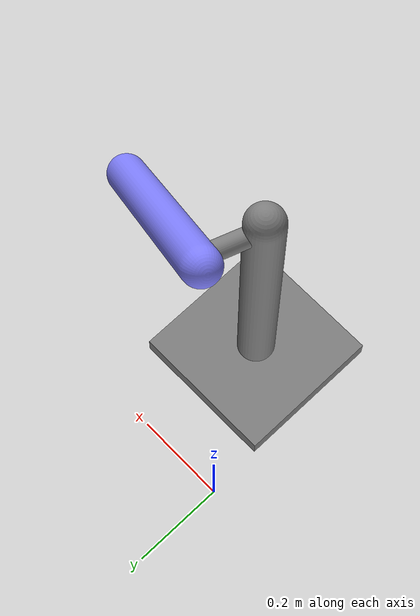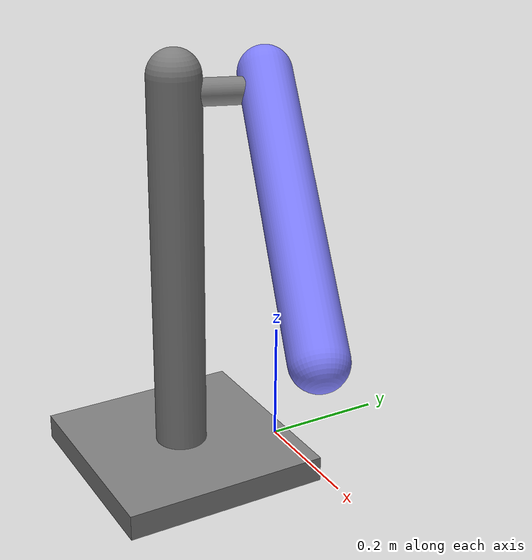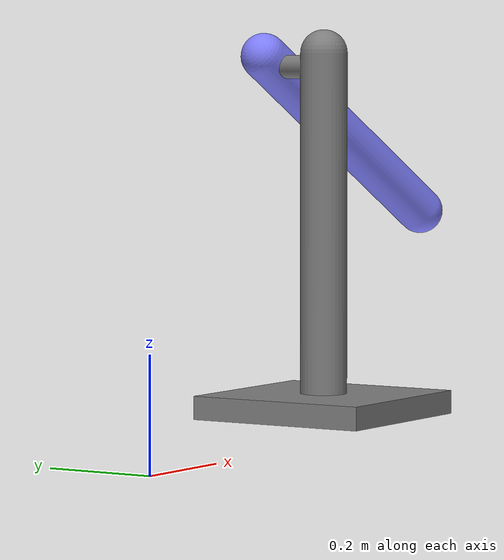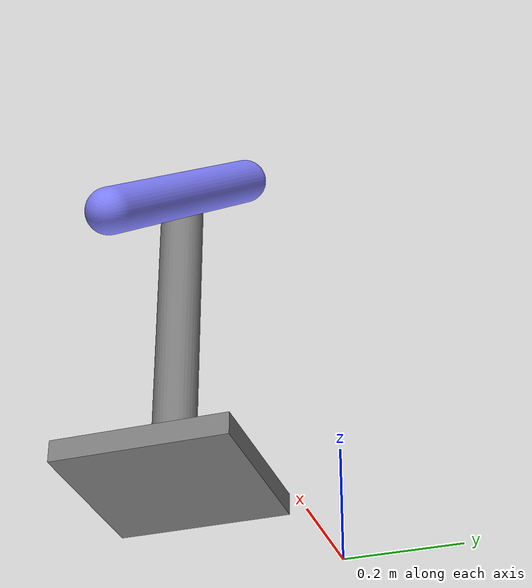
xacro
<?xml version="1.0"?>

<robot name="small_bot" xmlns:xacro="http://ros.org/wiki/xacro">

  <link name="world"/>
  <joint name="fixed" type="fixed">
    <parent link="world"/>
    <child link="base_link"/>
  </joint>

  <link
    name="base_link">
    <inertial>
      <origin
        xyz="0.13684 0.11966 0.2484"
        rpy="0 0 0" />
      <mass
        value="3.5218" />
      <inertia
        ixx="0.028345"
        ixy="2.7288E-19"
        ixz="-1.7377E-19"
        iyy="0.055839"
        iyz="2.2243E-19"
        izz="0.028345" />
    </inertial>
    <visual>
      <origin
        xyz="0 0 0"
        rpy="0 0 0" />
      <geometry>
        <mesh
          filename="package://small_bot/meshes/base_link.STL" />
      </geometry>
      <material
        name="">
        <color
          rgba="0.49804 0.49804 0.49804 1" />
      </material>
    </visual>
    <collision>
      <origin
        xyz="0 0 0"
        rpy="0 0 0" />
      <geometry>
        <mesh
          filename="package://small_bot/meshes/base_link.STL" />
      </geometry>
    </collision>
  </link>
  <link
    name="Link1">
    <inertial>
      <origin
        xyz="0.0029801 0.3076 -1.501E-08"
        rpy="0 0 0" />
      <mass
        value="2.8813" />
      <inertia
        ixx="0.089865"
        ixy="-0.0020663"
        ixz="1.1533E-09"
        iyy="0.0027566"
        iyz="1.4071E-08"
        izz="0.090604" />
    </inertial>
    <visual>
      <origin
        xyz="0 0 0"
        rpy="0 0 0" />
      <geometry>
        <mesh
          filename="package://small_bot/meshes/Link1.STL" />
      </geometry>
      <material
        name="">
        <color
          rgba="0.49804 0.49804 0.49804 1" />
      </material>
    </visual>
    <collision>
      <origin
        xyz="0 0 0"
        rpy="0 0 0" />
      <geometry>
        <mesh
          filename="package://small_bot/meshes/Link1.STL" />
      </geometry>
    </collision>
  </link>
  <joint
    name="joint_1"
    type="revolute">
    <origin
      xyz="0.13684 -0.2484 0.1199"
      rpy="1.5708 0 1.2399" />
    <parent
      link="base_link" />
    <child
      link="Link1" />
    <axis
      xyz="0 1 0" />
    <limit
      lower="0"
      upper="3.5"
      effort="10"
      velocity="10" />
  </joint>
  <link
    name="Link2">
    <inertial>
      <origin
        xyz="0.12736 -0.19158 2.3346E-08"
        rpy="0 0 0" />
      <mass
        value="2.202" />
      <inertia
        ixx="0.042995"
        ixy="-0.00015156"
        ixz="1.7226E-09"
        iyy="0.0015715"
        iyz="-7.256E-09"
        izz="0.042979" />
    </inertial>
    <visual>
      <origin
        xyz="0 0 0"
        rpy="0 0 0" />
      <geometry>
        <mesh
          filename="package://small_bot/meshes/Link2.STL" />
      </geometry>
      <material
        name="">
        <color
          rgba="0.50196 0.50196 1 1" />
      </material>
    </visual>
    <collision>
      <origin
        xyz="0 0 0"
        rpy="0 0 0" />
      <geometry>
        <mesh
          filename="package://small_bot/meshes/Link2.STL" />
      </geometry>
    </collision>
  </link>
  <joint
    name="joint_2"
    type="revolute">
    <origin
      xyz="0 0.54824 0"
      rpy="-0.91174 0 0" />
    <parent
      link="Link1" />
    <child
      link="Link2" />
    <axis
      xyz="1 0 0" />
    <limit
      lower="0"
      upper="5"
      effort="5"
      velocity="10" />
  </joint>

  <transmission name="joint_1_transmission">
        <type>transmission_interface/SimpleTransmission</type>
        <joint name="joint_1">
            <hardwareInterface>hardware_interface/EffortJointInterface</hardwareInterface>
        </joint>
        <actuator name="joint_1_motor">
      <hardwareInterface>hardware_interface/EffortJointInterface</hardwareInterface>
            <mechanicalReduction>10</mechanicalReduction>
        </actuator>
        </transmission>

        <transmission name="joint_2_transmission">
        <type>transmission_interface/SimpleTransmission</type>
        <joint name="joint_2">
            <hardwareInterface>hardware_interface/EffortJointInterface</hardwareInterface>
        </joint>
        <actuator name="joint_2_motor">
      <hardwareInterface>hardware_interface/EffortJointInterface</hardwareInterface>
            <mechanicalReduction>10</mechanicalReduction>
        </actuator>
        </transmission>

  <gazebo>
  <plugin name="gazebo_ros_control" filename="libgazebo_ros_control.so">

    <robotNamespace>/small_bot</robotNamespace>
  </plugin>
</gazebo>

</robot>
